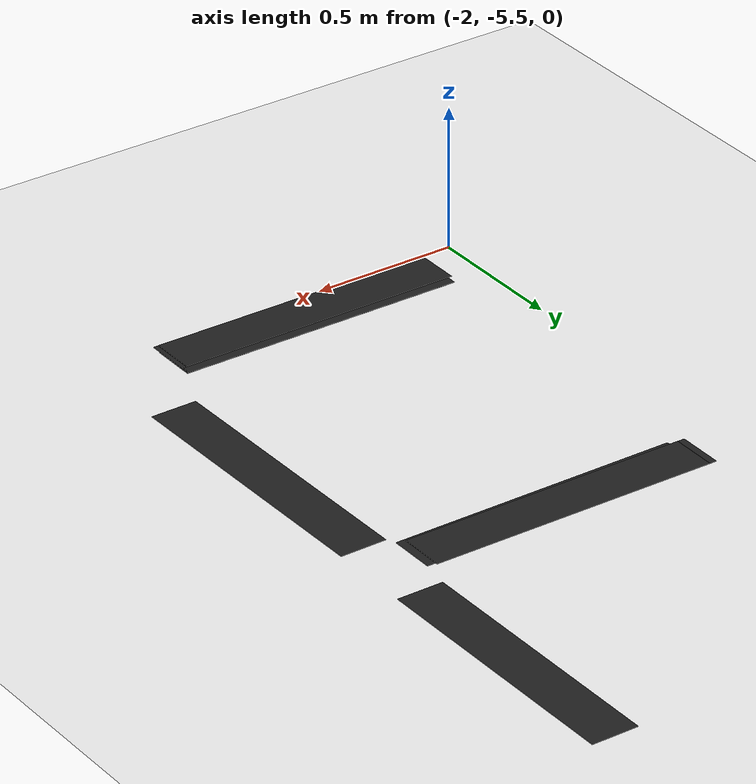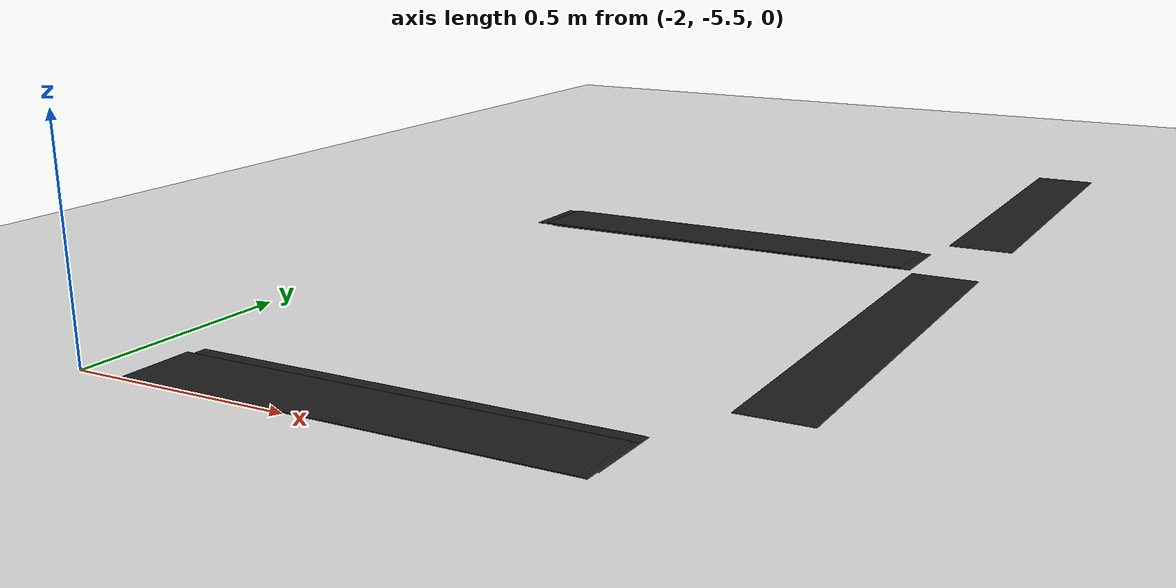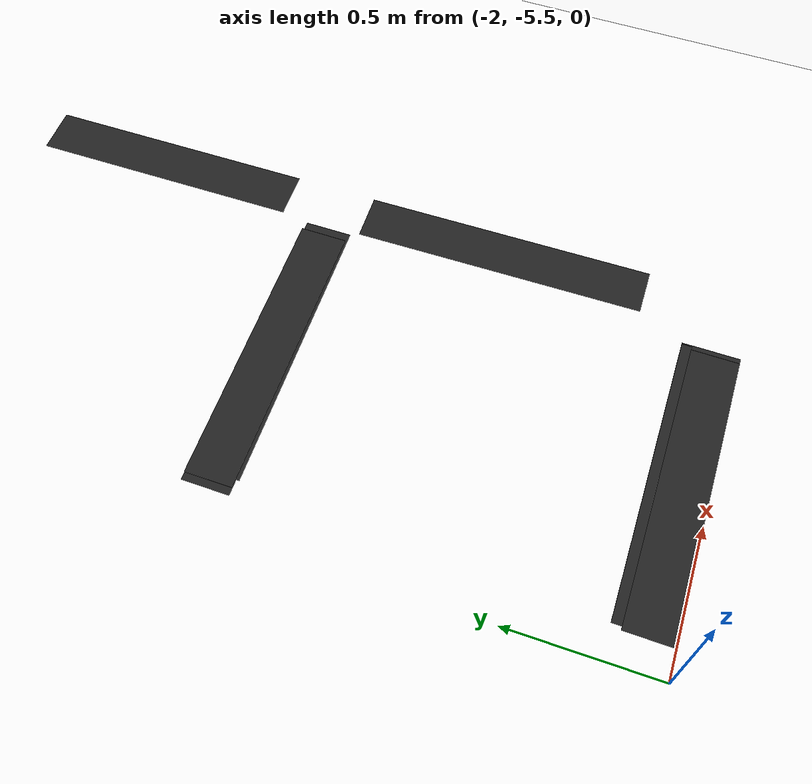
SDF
<sdf version="1.7">
 <world name="default">
  <model name="ground_plane">
   <static>1</static>
   <link name="link">
    <collision name="collision">
     <geometry><plane><normal>0 0 1</normal><size>100 100</size></plane></geometry>
     <surface>
      <contact><collide_bitmask>65535</collide_bitmask></contact>
      <friction><ode><mu>100</mu><mu2>50</mu2></ode></friction>
     </surface>
    </collision>
    <visual name="visual">
     <cast_shadows>0</cast_shadows>
     <geometry><plane><normal>0 0 1</normal><size>100 100</size></plane></geometry>
     <material>
      <script><uri>file://media/materials/scripts/gazebo.material</uri><name>Gazebo/White</name></script>
     </material>
    </visual>
   </link>
  </model>
  <model name="unit_box_clone_0_clone_clone_0_clone_1_clone">
   <link name="link">
    <inertial>
     <mass>1</mass>
     <inertia>
      <ixx>0.166667</ixx>
      <ixy>0</ixy>
      <ixz>0</ixz>
      <iyy>0.166667</iyy>
      <iyz>0</iyz>
      <izz>0.166667</izz>
     </inertia>
    </inertial>
    <visual name="visual">
     <geometry><box><size>1 0.160776 0.000937</size></box></geometry>
     <material>
      <script><name>Gazebo/Black</name><uri>file://media/materials/scripts/gazebo.material</uri></script>
      <shader type="pixel"><normal_map>__default__</normal_map></shader>
      <ambient>0 0 0 1</ambient>
      <diffuse>0 0 0 1</diffuse>
      <specular>0.1 0.1 0.1 1</specular>
      <emissive>0 0 0 1</emissive>
     </material>
    </visual>
    <collision name="collision">
     <geometry><box><size>1 0.160776 0.000937</size></box></geometry>
     <surface>
      <friction>
       <ode><mu>1</mu><mu2>1</mu2><fdir1>0 0 0</fdir1><slip1>0</slip1><slip2>0</slip2></ode>
       <torsional>
        <coefficient>1</coefficient>
        <patch_radius>0</patch_radius>
        <surface_radius>0</surface_radius>
        <use_patch_radius>1</use_patch_radius>
        <ode><slip>0</slip></ode>
       </torsional>
      </friction>
      <bounce><restitution_coefficient>0</restitution_coefficient><threshold>1e+06</threshold></bounce>
      <contact>
       <collide_without_contact>0</collide_without_contact>
       <collide_without_contact_bitmask>1</collide_without_contact_bitmask>
       <collide_bitmask>1</collide_bitmask>
       <ode>
        <soft_cfm>0</soft_cfm>
        <soft_erp>0.2</soft_erp>
        <kp>1e+13</kp>
        <kd>1</kd>
        <max_vel>0.01</max_vel>
        <min_depth>0</min_depth>
       </ode>
       <bullet>
        <split_impulse>1</split_impulse>
        <split_impulse_penetration_threshold>-0.01</split_impulse_penetration_threshold>
        <soft_cfm>0</soft_cfm>
        <soft_erp>0.2</soft_erp>
        <kp>1e+13</kp>
        <kd>1</kd>
       </bullet>
      </contact>
     </surface>
    </collision>
   </link>
   <static>0</static>
   <pose>-1.38089 -4.03194 0.000409 0 0.000119 -0.004304</pose>
  </model>
  <model name="unit_box_clone_0_clone_clone_0_clone_1_clone_clone">
   <link name="link">
    <inertial>
     <mass>1</mass>
     <inertia>
      <ixx>0.166667</ixx>
      <ixy>0</ixy>
      <ixz>0</ixz>
      <iyy>0.166667</iyy>
      <iyz>0</iyz>
      <izz>0.166667</izz>
     </inertia>
    </inertial>
    <visual name="visual">
     <geometry><box><size>1 0.160776 0.000937</size></box></geometry>
     <material>
      <script><name>Gazebo/Black</name><uri>file://media/materials/scripts/gazebo.material</uri></script>
      <shader type="pixel"><normal_map>__default__</normal_map></shader>
      <ambient>0 0 0 1</ambient>
      <diffuse>0 0 0 1</diffuse>
      <specular>0.1 0.1 0.1 1</specular>
      <emissive>0 0 0 1</emissive>
     </material>
    </visual>
    <collision name="collision">
     <geometry><box><size>1 0.160776 0.000937</size></box></geometry>
     <surface>
      <friction>
       <ode><mu>1</mu><mu2>1</mu2><fdir1>0 0 0</fdir1><slip1>0</slip1><slip2>0</slip2></ode>
       <torsional>
        <coefficient>1</coefficient>
        <patch_radius>0</patch_radius>
        <surface_radius>0</surface_radius>
        <use_patch_radius>1</use_patch_radius>
        <ode><slip>0</slip></ode>
       </torsional>
      </friction>
      <bounce><restitution_coefficient>0</restitution_coefficient><threshold>1e+06</threshold></bounce>
      <contact>
       <collide_without_contact>0</collide_without_contact>
       <collide_without_contact_bitmask>1</collide_without_contact_bitmask>
       <collide_bitmask>1</collide_bitmask>
       <ode>
        <soft_cfm>0</soft_cfm>
        <soft_erp>0.2</soft_erp>
        <kp>1e+13</kp>
        <kd>1</kd>
        <max_vel>0.01</max_vel>
        <min_depth>0</min_depth>
       </ode>
       <bullet>
        <split_impulse>1</split_impulse>
        <split_impulse_penetration_threshold>-0.01</split_impulse_penetration_threshold>
        <soft_cfm>0</soft_cfm>
        <soft_erp>0.2</soft_erp>
        <kp>1e+13</kp>
        <kd>1</kd>
       </bullet>
      </contact>
     </surface>
    </collision>
   </link>
   <static>0</static>
   <pose>-1.32548 -4.03983 0.001288 1e-06 2e-06 0.000723</pose>
  </model>
  <model name="unit_box_clone_0_clone_clone_0_clone_1_clone_clone_0">
   <link name="link">
    <inertial>
     <mass>1</mass>
     <inertia>
      <ixx>0.166667</ixx>
      <ixy>0</ixy>
      <ixz>0</ixz>
      <iyy>0.166667</iyy>
      <iyz>0</iyz>
      <izz>0.166667</izz>
     </inertia>
    </inertial>
    <visual name="visual">
     <geometry><box><size>1 0.160776 0.000937</size></box></geometry>
     <material>
      <script><name>Gazebo/Black</name><uri>file://media/materials/scripts/gazebo.material</uri></script>
      <shader type="pixel"><normal_map>__default__</normal_map></shader>
      <ambient>0 0 0 1</ambient>
      <diffuse>0 0 0 1</diffuse>
      <specular>0.1 0.1 0.1 1</specular>
      <emissive>0 0 0 1</emissive>
     </material>
    </visual>
    <collision name="collision">
     <geometry><box><size>1 0.160776 0.000937</size></box></geometry>
     <surface>
      <friction>
       <ode><mu>1</mu><mu2>1</mu2><fdir1>0 0 0</fdir1><slip1>0</slip1><slip2>0</slip2></ode>
       <torsional>
        <coefficient>1</coefficient>
        <patch_radius>0</patch_radius>
        <surface_radius>0</surface_radius>
        <use_patch_radius>1</use_patch_radius>
        <ode><slip>0</slip></ode>
       </torsional>
      </friction>
      <bounce><restitution_coefficient>0</restitution_coefficient><threshold>1e+06</threshold></bounce>
      <contact>
       <collide_without_contact>0</collide_without_contact>
       <collide_without_contact_bitmask>1</collide_without_contact_bitmask>
       <collide_bitmask>1</collide_bitmask>
       <ode>
        <soft_cfm>0</soft_cfm>
        <soft_erp>0.2</soft_erp>
        <kp>1e+13</kp>
        <kd>1</kd>
        <max_vel>0.01</max_vel>
        <min_depth>0</min_depth>
       </ode>
       <bullet>
        <split_impulse>1</split_impulse>
        <split_impulse_penetration_threshold>-0.01</split_impulse_penetration_threshold>
        <soft_cfm>0</soft_cfm>
        <soft_erp>0.2</soft_erp>
        <kp>1e+13</kp>
        <kd>1</kd>
       </bullet>
      </contact>
     </surface>
    </collision>
   </link>
   <static>0</static>
   <pose>-1.35462 -4.02981 0.002217 2e-06 -1.4e-05 -0.003469</pose>
  </model>
  <model name="unit_box_clone_0_clone_clone_0_clone_clone_clone_1_clone">
   <link name="link">
    <inertial>
     <mass>1</mass>
     <inertia>
      <ixx>0.166667</ixx>
      <ixy>0</ixy>
      <ixz>0</ixz>
      <iyy>0.166667</iyy>
      <iyz>0</iyz>
      <izz>0.166667</izz>
     </inertia>
    </inertial>
    <visual name="visual">
     <geometry><box><size>1 0.160776 0.000937</size></box></geometry>
     <material>
      <script><name>Gazebo/Black</name><uri>file://media/materials/scripts/gazebo.material</uri></script>
      <shader type="pixel"><normal_map>__default__</normal_map></shader>
      <ambient>0 0 0 1</ambient>
      <diffuse>0 0 0 1</diffuse>
      <specular>0.1 0.1 0.1 1</specular>
      <emissive>0 0 0 1</emissive>
     </material>
    </visual>
    <collision name="collision">
     <geometry><box><size>1 0.160776 0.000937</size></box></geometry>
     <surface>
      <friction>
       <ode><mu>1</mu><mu2>1</mu2><fdir1>0 0 0</fdir1><slip1>0</slip1><slip2>0</slip2></ode>
       <torsional>
        <coefficient>1</coefficient>
        <patch_radius>0</patch_radius>
        <surface_radius>0</surface_radius>
        <use_patch_radius>1</use_patch_radius>
        <ode><slip>0</slip></ode>
       </torsional>
      </friction>
      <bounce><restitution_coefficient>0</restitution_coefficient><threshold>1e+06</threshold></bounce>
      <contact>
       <collide_without_contact>0</collide_without_contact>
       <collide_without_contact_bitmask>1</collide_without_contact_bitmask>
       <collide_bitmask>1</collide_bitmask>
       <ode>
        <soft_cfm>0</soft_cfm>
        <soft_erp>0.2</soft_erp>
        <kp>1e+13</kp>
        <kd>1</kd>
        <max_vel>0.01</max_vel>
        <min_depth>0</min_depth>
       </ode>
       <bullet>
        <split_impulse>1</split_impulse>
        <split_impulse_penetration_threshold>-0.01</split_impulse_penetration_threshold>
        <soft_cfm>0</soft_cfm>
        <soft_erp>0.2</soft_erp>
        <kp>1e+13</kp>
        <kd>1</kd>
       </bullet>
      </contact>
     </surface>
    </collision>
   </link>
   <static>0</static>
   <pose>-0.725608 -4.64812 0.002161 3e-06 -6.2e-05 -1.56151</pose>
  </model>
  <model name="unit_box_clone_0_clone_clone_0_clone_clone_clone_2_clone_clone">
   <link name="link">
    <inertial>
     <mass>1</mass>
     <inertia>
      <ixx>0.166667</ixx>
      <ixy>0</ixy>
      <ixz>0</ixz>
      <iyy>0.166667</iyy>
      <iyz>0</iyz>
      <izz>0.166667</izz>
     </inertia>
    </inertial>
    <visual name="visual">
     <geometry><box><size>0.939585 0.160776 0.000937</size></box></geometry>
     <material>
      <script><name>Gazebo/Black</name><uri>file://media/materials/scripts/gazebo.material</uri></script>
      <shader type="pixel"><normal_map>__default__</normal_map></shader>
      <ambient>0 0 0 1</ambient>
      <diffuse>0 0 0 1</diffuse>
      <specular>0.1 0.1 0.1 1</specular>
      <emissive>0 0 0 1</emissive>
     </material>
    </visual>
    <collision name="collision">
     <geometry><box><size>0.939585 0.160776 0.000937</size></box></geometry>
     <surface>
      <friction>
       <ode><mu>1</mu><mu2>1</mu2><fdir1>0 0 0</fdir1><slip1>0</slip1><slip2>0</slip2></ode>
       <torsional>
        <coefficient>1</coefficient>
        <patch_radius>0</patch_radius>
        <surface_radius>0</surface_radius>
        <use_patch_radius>1</use_patch_radius>
        <ode><slip>0</slip></ode>
       </torsional>
      </friction>
      <bounce><restitution_coefficient>0</restitution_coefficient><threshold>1e+06</threshold></bounce>
      <contact>
       <collide_without_contact>0</collide_without_contact>
       <collide_without_contact_bitmask>1</collide_without_contact_bitmask>
       <collide_bitmask>1</collide_bitmask>
       <ode>
        <soft_cfm>0</soft_cfm>
        <soft_erp>0.2</soft_erp>
        <kp>1e+13</kp>
        <kd>1</kd>
        <max_vel>0.01</max_vel>
        <min_depth>0</min_depth>
       </ode>
       <bullet>
        <split_impulse>1</split_impulse>
        <split_impulse_penetration_threshold>-0.01</split_impulse_penetration_threshold>
        <soft_cfm>0</soft_cfm>
        <soft_erp>0.2</soft_erp>
        <kp>1e+13</kp>
        <kd>1</kd>
       </bullet>
      </contact>
     </surface>
    </collision>
   </link>
   <static>0</static>
   <pose>-0.730548 -3.39002 0.002343 1.1e-05 2e-06 -1.56732</pose>
  </model>
  <model name="unit_box_clone_0_clone_clone_0_clone_1_clone_clone_0_clone">
   <link name="link">
    <inertial>
     <mass>1</mass>
     <inertia>
      <ixx>0.166667</ixx>
      <ixy>0</ixy>
      <ixz>0</ixz>
      <iyy>0.166667</iyy>
      <iyz>0</iyz>
      <izz>0.166667</izz>
     </inertia>
    </inertial>
    <visual name="visual">
     <geometry><box><size>1 0.160776 0.000937</size></box></geometry>
     <material>
      <script><name>Gazebo/Black</name><uri>file://media/materials/scripts/gazebo.material</uri></script>
      <shader type="pixel"><normal_map>__default__</normal_map></shader>
      <ambient>0 0 0 1</ambient>
      <diffuse>0 0 0 1</diffuse>
      <specular>0.1 0.1 0.1 1</specular>
      <emissive>0 0 0 1</emissive>
     </material>
    </visual>
    <collision name="collision">
     <geometry><box><size>1 0.160776 0.000937</size></box></geometry>
     <surface>
      <friction>
       <ode><mu>1</mu><mu2>1</mu2><fdir1>0 0 0</fdir1><slip1>0</slip1><slip2>0</slip2></ode>
       <torsional>
        <coefficient>1</coefficient>
        <patch_radius>0</patch_radius>
        <surface_radius>0</surface_radius>
        <use_patch_radius>1</use_patch_radius>
        <ode><slip>0</slip></ode>
       </torsional>
      </friction>
      <bounce><restitution_coefficient>0</restitution_coefficient><threshold>1e+06</threshold></bounce>
      <contact>
       <collide_without_contact>0</collide_without_contact>
       <collide_without_contact_bitmask>1</collide_without_contact_bitmask>
       <collide_bitmask>1</collide_bitmask>
       <ode>
        <soft_cfm>0</soft_cfm>
        <soft_erp>0.2</soft_erp>
        <kp>1e+13</kp>
        <kd>1</kd>
        <max_vel>0.01</max_vel>
        <min_depth>0</min_depth>
       </ode>
       <bullet>
        <split_impulse>1</split_impulse>
        <split_impulse_penetration_threshold>-0.01</split_impulse_penetration_threshold>
        <soft_cfm>0</soft_cfm>
        <soft_erp>0.2</soft_erp>
        <kp>1e+13</kp>
        <kd>1</kd>
       </bullet>
      </contact>
     </surface>
    </collision>
   </link>
   <static>0</static>
   <pose>-1.37692 -5.38638 0.000364 4e-06 0.00021 -0.003238</pose>
  </model>
  <model name="unit_box_clone_0_clone_clone_0_clone_1_clone_clone_0_clone_0">
   <link name="link">
    <inertial>
     <mass>1</mass>
     <inertia>
      <ixx>0.166667</ixx>
      <ixy>0</ixy>
      <ixz>0</ixz>
      <iyy>0.166667</iyy>
      <iyz>0</iyz>
      <izz>0.166667</izz>
     </inertia>
    </inertial>
    <visual name="visual">
     <geometry><box><size>1 0.160776 0.000937</size></box></geometry>
     <material>
      <script><name>Gazebo/Black</name><uri>file://media/materials/scripts/gazebo.material</uri></script>
      <shader type="pixel"><normal_map>__default__</normal_map></shader>
      <ambient>0 0 0 1</ambient>
      <diffuse>0 0 0 1</diffuse>
      <specular>0.1 0.1 0.1 1</specular>
      <emissive>0 0 0 1</emissive>
     </material>
    </visual>
    <collision name="collision">
     <geometry><box><size>1 0.160776 0.000937</size></box></geometry>
     <surface>
      <friction>
       <ode><mu>1</mu><mu2>1</mu2><fdir1>0 0 0</fdir1><slip1>0</slip1><slip2>0</slip2></ode>
       <torsional>
        <coefficient>1</coefficient>
        <patch_radius>0</patch_radius>
        <surface_radius>0</surface_radius>
        <use_patch_radius>1</use_patch_radius>
        <ode><slip>0</slip></ode>
       </torsional>
      </friction>
      <bounce><restitution_coefficient>0</restitution_coefficient><threshold>1e+06</threshold></bounce>
      <contact>
       <collide_without_contact>0</collide_without_contact>
       <collide_without_contact_bitmask>1</collide_without_contact_bitmask>
       <collide_bitmask>1</collide_bitmask>
       <ode>
        <soft_cfm>0</soft_cfm>
        <soft_erp>0.2</soft_erp>
        <kp>1e+13</kp>
        <kd>1</kd>
        <max_vel>0.01</max_vel>
        <min_depth>0</min_depth>
       </ode>
       <bullet>
        <split_impulse>1</split_impulse>
        <split_impulse_penetration_threshold>-0.01</split_impulse_penetration_threshold>
        <soft_cfm>0</soft_cfm>
        <soft_erp>0.2</soft_erp>
        <kp>1e+13</kp>
        <kd>1</kd>
       </bullet>
      </contact>
     </surface>
    </collision>
   </link>
   <static>0</static>
   <pose>-1.38168 -5.38673 0.001303 1e-05 0.000209 -0.003449</pose>
  </model>
  <model name="unit_box_clone_0_clone_clone_0_clone_1_clone_clone_0_clone_1">
   <link name="link">
    <inertial>
     <mass>1</mass>
     <inertia>
      <ixx>0.166667</ixx>
      <ixy>0</ixy>
      <ixz>0</ixz>
      <iyy>0.166667</iyy>
      <iyz>0</iyz>
      <izz>0.166667</izz>
     </inertia>
    </inertial>
    <visual name="visual">
     <geometry><box><size>1 0.160776 0.000937</size></box></geometry>
     <material>
      <script><name>Gazebo/Black</name><uri>file://media/materials/scripts/gazebo.material</uri></script>
      <shader type="pixel"><normal_map>__default__</normal_map></shader>
      <ambient>0 0 0 1</ambient>
      <diffuse>0 0 0 1</diffuse>
      <specular>0.1 0.1 0.1 1</specular>
      <emissive>0 0 0 1</emissive>
     </material>
    </visual>
    <collision name="collision">
     <geometry><box><size>1 0.160776 0.000937</size></box></geometry>
     <surface>
      <friction>
       <ode><mu>1</mu><mu2>1</mu2><fdir1>0 0 0</fdir1><slip1>0</slip1><slip2>0</slip2></ode>
       <torsional>
        <coefficient>1</coefficient>
        <patch_radius>0</patch_radius>
        <surface_radius>0</surface_radius>
        <use_patch_radius>1</use_patch_radius>
        <ode><slip>0</slip></ode>
       </torsional>
      </friction>
      <bounce><restitution_coefficient>0</restitution_coefficient><threshold>1e+06</threshold></bounce>
      <contact>
       <collide_without_contact>0</collide_without_contact>
       <collide_without_contact_bitmask>1</collide_without_contact_bitmask>
       <collide_bitmask>1</collide_bitmask>
       <ode>
        <soft_cfm>0</soft_cfm>
        <soft_erp>0.2</soft_erp>
        <kp>1e+13</kp>
        <kd>1</kd>
        <max_vel>0.01</max_vel>
        <min_depth>0</min_depth>
       </ode>
       <bullet>
        <split_impulse>1</split_impulse>
        <split_impulse_penetration_threshold>-0.01</split_impulse_penetration_threshold>
        <soft_cfm>0</soft_cfm>
        <soft_erp>0.2</soft_erp>
        <kp>1e+13</kp>
        <kd>1</kd>
       </bullet>
      </contact>
     </surface>
    </collision>
   </link>
   <static>0</static>
   <pose>-1.37767 -5.41997 0.002239 1.5e-05 0.000209 -0.003707</pose>
  </model>
  <model name="unit_box_clone_0_clone_clone_0_clone_1_clone_clone_0_clone_2">
   <link name="link">
    <inertial>
     <mass>1</mass>
     <inertia>
      <ixx>0.166667</ixx>
      <ixy>0</ixy>
      <ixz>0</ixz>
      <iyy>0.166667</iyy>
      <iyz>0</iyz>
      <izz>0.166667</izz>
     </inertia>
    </inertial>
    <visual name="visual">
     <geometry><box><size>1 0.160776 0.000937</size></box></geometry>
     <material>
      <script><name>Gazebo/Black</name><uri>file://media/materials/scripts/gazebo.material</uri></script>
      <shader type="pixel"><normal_map>__default__</normal_map></shader>
      <ambient>0 0 0 1</ambient>
      <diffuse>0 0 0 1</diffuse>
      <specular>0.1 0.1 0.1 1</specular>
      <emissive>0 0 0 1</emissive>
     </material>
    </visual>
    <collision name="collision">
     <geometry><box><size>1 0.160776 0.000937</size></box></geometry>
     <surface>
      <friction>
       <ode><mu>1</mu><mu2>1</mu2><fdir1>0 0 0</fdir1><slip1>0</slip1><slip2>0</slip2></ode>
       <torsional>
        <coefficient>1</coefficient>
        <patch_radius>0</patch_radius>
        <surface_radius>0</surface_radius>
        <use_patch_radius>1</use_patch_radius>
        <ode><slip>0</slip></ode>
       </torsional>
      </friction>
      <bounce><restitution_coefficient>0</restitution_coefficient><threshold>1e+06</threshold></bounce>
      <contact>
       <collide_without_contact>0</collide_without_contact>
       <collide_without_contact_bitmask>1</collide_without_contact_bitmask>
       <collide_bitmask>1</collide_bitmask>
       <ode>
        <soft_cfm>0</soft_cfm>
        <soft_erp>0.2</soft_erp>
        <kp>1e+13</kp>
        <kd>1</kd>
        <max_vel>0.01</max_vel>
        <min_depth>0</min_depth>
       </ode>
       <bullet>
        <split_impulse>1</split_impulse>
        <split_impulse_penetration_threshold>-0.01</split_impulse_penetration_threshold>
        <soft_cfm>0</soft_cfm>
        <soft_erp>0.2</soft_erp>
        <kp>1e+13</kp>
        <kd>1</kd>
       </bullet>
      </contact>
     </surface>
    </collision>
   </link>
   <static>0</static>
   <pose>-1.39462 -5.41947 0.003083 1.7e-05 0.000408 -0.003547</pose>
  </model>
 </world>
</sdf>
